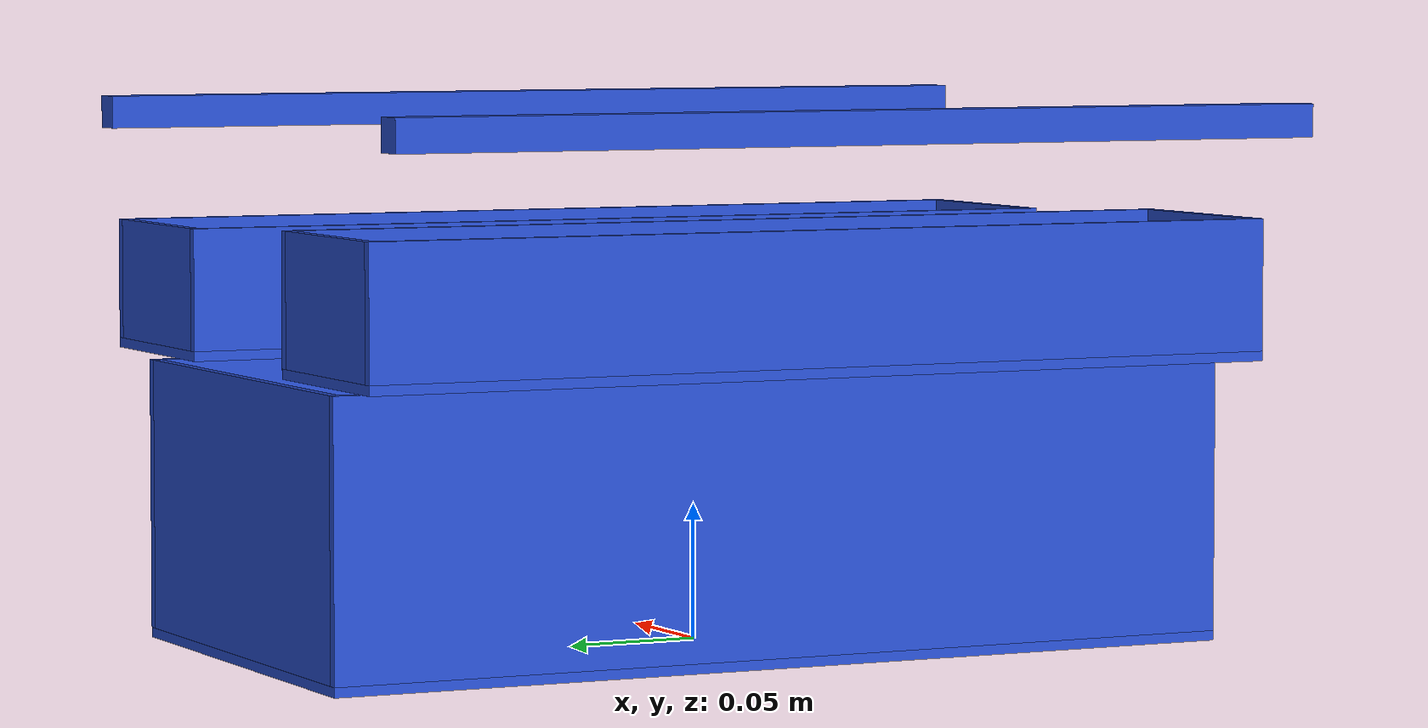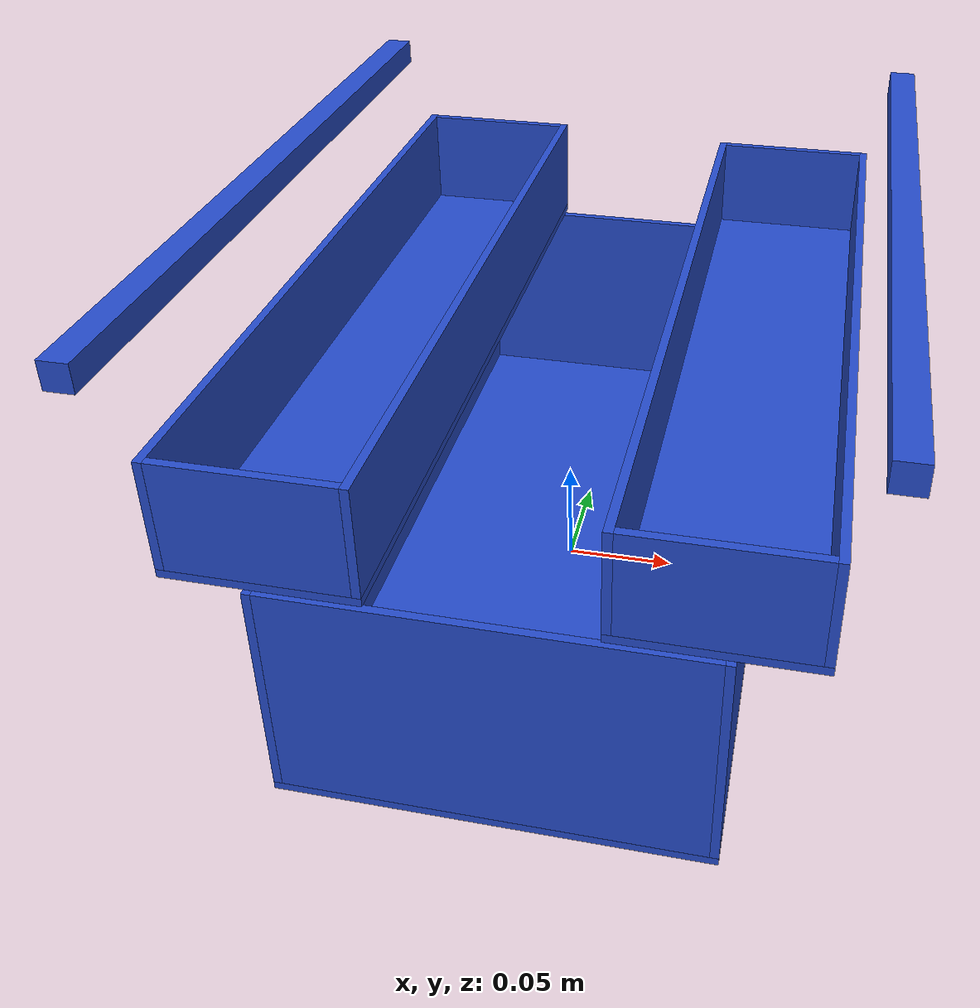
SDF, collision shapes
<?xml version="1.0" ?>
<sdf version="1.5">
  <model name="jsk_toolbox_metal_blue">
    <link name="link">
      <pose>0 0 0 0 0 0</pose>

      <collision name="col0">
        <pose> 0.0864 0.00336 0.1074 0 0 0</pose>
        <geometry>
          <box>
            <size> 0.0792 0.3492 0.0036 </size>
          </box>
        </geometry>
      </collision>
      <collision name="col1">
        <pose> 0.1242 0.00336 0.1314 0 0 0</pose>
        <geometry>
          <box>
            <size> 0.0036 0.3492 0.0444 </size>
          </box>
        </geometry>
      </collision>
      <collision name="col2">
        <pose> 0.0486 0.00336 0.1314 0 0 0</pose>
        <geometry>
          <box>
            <size> 0.0036 0.3492 0.0444 </size>
          </box>
        </geometry>
      </collision>
      <collision name="col3">
        <pose> 0.0864 0.17616 0.1314 0 0 0</pose>
        <geometry>
          <box>
            <size> 0.072 0.0036 0.0444 </size>
          </box>
        </geometry>
      </collision>
      <collision name="col4">
        <pose> 0.0864 -0.16944 0.1314 0 0 0</pose>
        <geometry>
          <box>
            <size> 0.072 0.0036 0.0444 </size>
          </box>
        </geometry>
      </collision>
      <collision name="col5">
        <pose> -0.0792 0.00336 0.1074 0 0 0</pose>
        <geometry>
          <box>
            <size> 0.0792 0.3492 0.0036 </size>
          </box>
        </geometry>
      </collision>
      <collision name="col6">
        <pose> -0.0414 0.00336 0.1332 0 0 0</pose>
        <geometry>
          <box>
            <size> 0.0036 0.3492 0.048 </size>
          </box>
        </geometry>
      </collision>
      <collision name="col7">
        <pose> -0.117 0.00336 0.1332 0 0 0</pose>
        <geometry>
          <box>
            <size> 0.0036 0.3492 0.048 </size>
          </box>
        </geometry>
      </collision>
      <collision name="col8">
        <pose> -0.0792 0.17616 0.1332 0 0 0</pose>
        <geometry>
          <box>
            <size> 0.072 0.0036 0.048 </size>
          </box>
        </geometry>
      </collision>
      <collision name="col9">
        <pose> -0.0792 -0.16944 0.1332 0 0 0</pose>
        <geometry>
          <box>
            <size> 0.072 0.0036 0.048 </size>
          </box>
        </geometry>
      </collision>
      <collision name="col10">
        <pose> 0.0036 0.00336 0.0018 0 0 0</pose>
        <geometry>
          <box>
            <size> 0.18 0.3492 0.0036 </size>
          </box>
        </geometry>
      </collision>
      <collision name="col11">
        <pose> 0.0918 0.00336 0.0534 0 0 0</pose>
        <geometry>
          <box>
            <size> 0.0036 0.3492 0.0996 </size>
          </box>
        </geometry>
      </collision>
      <collision name="col12">
        <pose> -0.0846 0.00336 0.0534 0 0 0</pose>
        <geometry>
          <box>
            <size> 0.0036 0.3492 0.0996 </size>
          </box>
        </geometry>
      </collision>
      <collision name="col13">
        <pose> 0.0036 0.17616 0.0534 0 0 0</pose>
        <geometry>
          <box>
            <size> 0.1728 0.0036 0.0996 </size>
          </box>
        </geometry>
      </collision>
      <collision name="col14">
        <pose> 0.0036 -0.16944 0.0534 0 0 0</pose>
        <geometry>
          <box>
            <size> 0.1728 0.0036 0.0996 </size>
          </box>
        </geometry>
      </collision>
      <collision name="handle_col0">
        <pose> 0.13896 0.0 0.1932 0 0 0</pose>
        <geometry>
          <box>
            <size> 0.012 0.3552 0.012 </size>
          </box>
        </geometry>
      </collision>
      <collision name="handle_col1">
        <pose> -0.13536 0.0 0.1932 0 0 0</pose>
        <geometry>
          <box>
            <size> 0.012 0.3552 0.012 </size>
          </box>
        </geometry>
      </collision>

      <visual name="bodyMesh">
        <pose>0 0 0 0 0 0</pose>
        <geometry>
          <mesh>
            <uri>model://jsk_toolbox_metal_blue/meshes/toolbox_metal.dae</uri>
            <scale>1.2 1.2 1.2</scale>
          </mesh>
        </geometry>
        <material>
          <script>
            <uri>model://jsk_toolbox_metal_blue/materials/scripts</uri>
            <uri>model://jsk_toolbox_metal_blue/materials/textures</uri>
            <name>toolbox_blue</name>
          </script>
        </material>
      </visual>
    </link>
    <static>1</static>
  </model>
</sdf>
